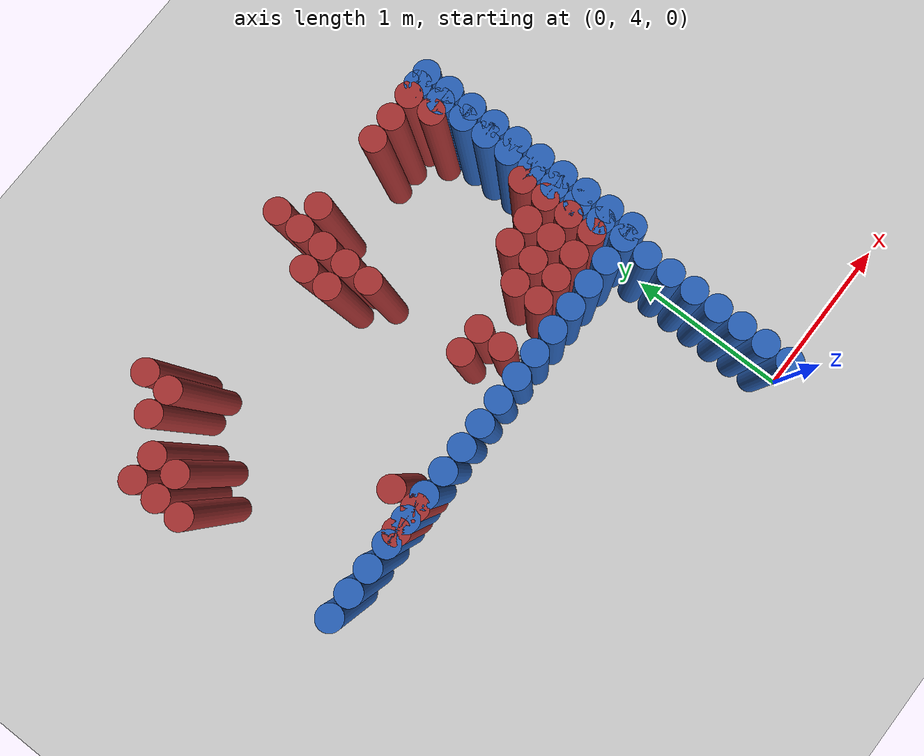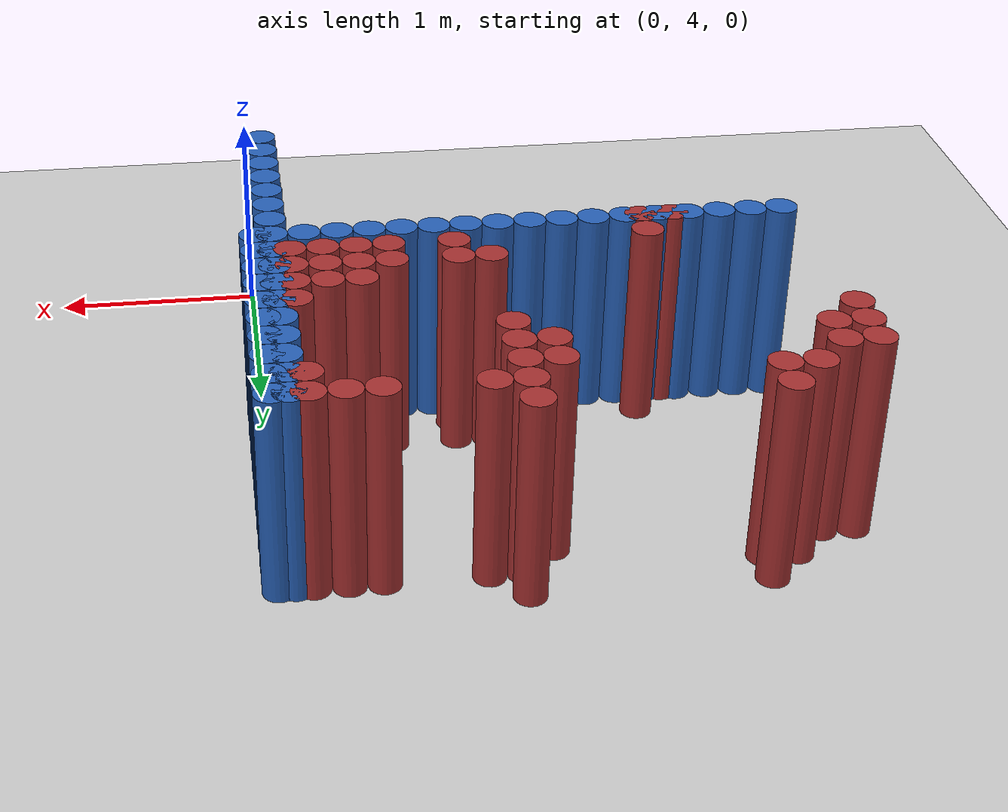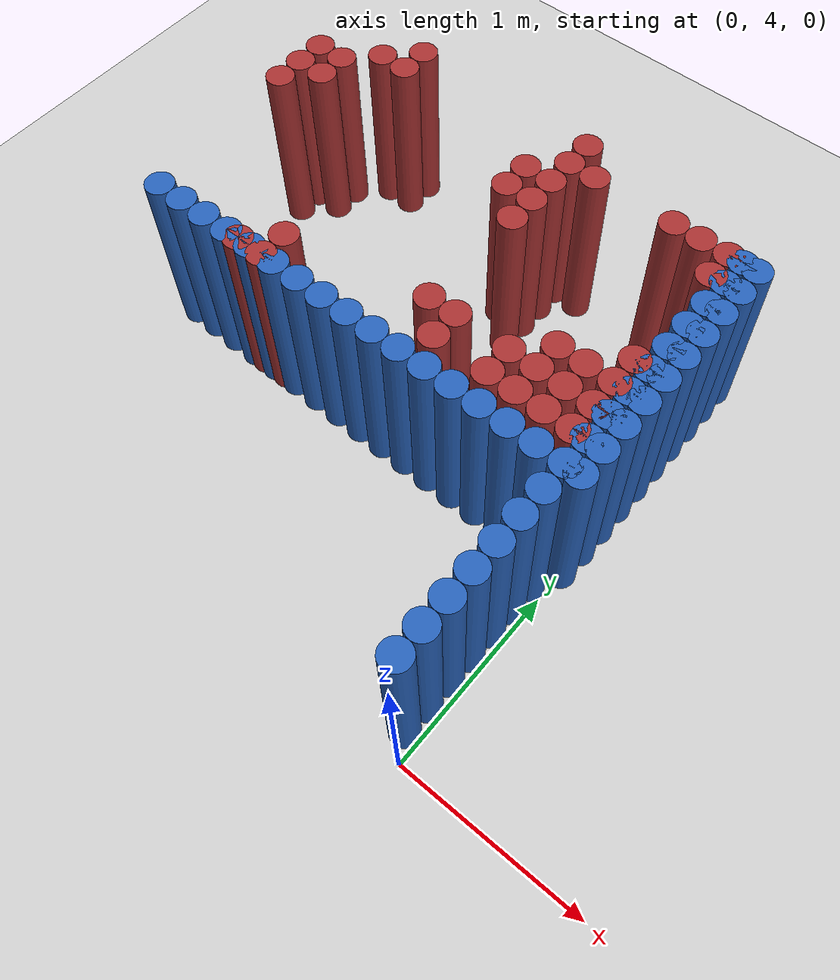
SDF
<sdf version="1.6">
 <world name="barn_world">
  <model name="ground_plane">
   <static>1</static>
   <link name="link">
    <collision name="collision">
     <geometry><plane><normal>0 0 1</normal><size>100 100</size></plane></geometry>
    </collision>
    <visual name="visual">
     <geometry><plane><normal>0 0 1</normal><size>100 100</size></plane></geometry>
     <material>
      <script><uri>file://media/materials/scripts/gazebo.material</uri><name>Gazebo/Grey</name></script>
     </material>
    </visual>
   </link>
  </model>
  <model name="unit_cylinder_82">
   <static>1</static>
   <pose>-0.0750 4.1250 0.5 0 0 0</pose>
   <link name="link">
    <collision name="collision">
     <geometry><cylinder><radius>0.075</radius><length>1</length></cylinder></geometry>
    </collision>
    <visual name="visual">
     <geometry><cylinder><radius>0.075</radius><length>1</length></cylinder></geometry>
     <material><ambient>0.152 0.379 0.72 1</ambient><diffuse>0.152 0.379 0.72 1</diffuse></material>
    </visual>
   </link>
  </model>
  <model name="unit_cylinder_84">
   <static>1</static>
   <pose>-0.0750 4.2750 0.5 0 0 0</pose>
   <link name="link">
    <collision name="collision">
     <geometry><cylinder><radius>0.075</radius><length>1</length></cylinder></geometry>
    </collision>
    <visual name="visual">
     <geometry><cylinder><radius>0.075</radius><length>1</length></cylinder></geometry>
     <material><ambient>0.152 0.379 0.72 1</ambient><diffuse>0.152 0.379 0.72 1</diffuse></material>
    </visual>
   </link>
  </model>
  <model name="unit_cylinder_86">
   <static>1</static>
   <pose>-0.0750 4.4250 0.5 0 0 0</pose>
   <link name="link">
    <collision name="collision">
     <geometry><cylinder><radius>0.075</radius><length>1</length></cylinder></geometry>
    </collision>
    <visual name="visual">
     <geometry><cylinder><radius>0.075</radius><length>1</length></cylinder></geometry>
     <material><ambient>0.152 0.379 0.72 1</ambient><diffuse>0.152 0.379 0.72 1</diffuse></material>
    </visual>
   </link>
  </model>
  <model name="unit_cylinder_88">
   <static>1</static>
   <pose>-0.0750 4.5750 0.5 0 0 0</pose>
   <link name="link">
    <collision name="collision">
     <geometry><cylinder><radius>0.075</radius><length>1</length></cylinder></geometry>
    </collision>
    <visual name="visual">
     <geometry><cylinder><radius>0.075</radius><length>1</length></cylinder></geometry>
     <material><ambient>0.152 0.379 0.72 1</ambient><diffuse>0.152 0.379 0.72 1</diffuse></material>
    </visual>
   </link>
  </model>
  <model name="unit_cylinder_90">
   <static>1</static>
   <pose>-0.0750 4.7250 0.5 0 0 0</pose>
   <link name="link">
    <collision name="collision">
     <geometry><cylinder><radius>0.075</radius><length>1</length></cylinder></geometry>
    </collision>
    <visual name="visual">
     <geometry><cylinder><radius>0.075</radius><length>1</length></cylinder></geometry>
     <material><ambient>0.152 0.379 0.72 1</ambient><diffuse>0.152 0.379 0.72 1</diffuse></material>
    </visual>
   </link>
  </model>
  <model name="unit_cylinder_92">
   <static>1</static>
   <pose>-0.0750 4.8750 0.5 0 0 0</pose>
   <link name="link">
    <collision name="collision">
     <geometry><cylinder><radius>0.075</radius><length>1</length></cylinder></geometry>
    </collision>
    <visual name="visual">
     <geometry><cylinder><radius>0.075</radius><length>1</length></cylinder></geometry>
     <material><ambient>0.152 0.379 0.72 1</ambient><diffuse>0.152 0.379 0.72 1</diffuse></material>
    </visual>
   </link>
  </model>
  <model name="unit_cylinder_94">
   <static>1</static>
   <pose>-0.0750 5.0250 0.5 0 0 0</pose>
   <link name="link">
    <collision name="collision">
     <geometry><cylinder><radius>0.075</radius><length>1</length></cylinder></geometry>
    </collision>
    <visual name="visual">
     <geometry><cylinder><radius>0.075</radius><length>1</length></cylinder></geometry>
     <material><ambient>0.152 0.379 0.72 1</ambient><diffuse>0.152 0.379 0.72 1</diffuse></material>
    </visual>
   </link>
  </model>
  <model name="unit_cylinder_96">
   <static>1</static>
   <pose>-0.0750 5.1750 0.5 0 0 0</pose>
   <link name="link">
    <collision name="collision">
     <geometry><cylinder><radius>0.075</radius><length>1</length></cylinder></geometry>
    </collision>
    <visual name="visual">
     <geometry><cylinder><radius>0.075</radius><length>1</length></cylinder></geometry>
     <material><ambient>0.152 0.379 0.72 1</ambient><diffuse>0.152 0.379 0.72 1</diffuse></material>
    </visual>
   </link>
  </model>
  <model name="unit_cylinder_97">
   <static>1</static>
   <pose>-0.2250 5.1750 0.5 0 0 0</pose>
   <link name="link">
    <collision name="collision">
     <geometry><cylinder><radius>0.075</radius><length>1</length></cylinder></geometry>
    </collision>
    <visual name="visual">
     <geometry><cylinder><radius>0.075</radius><length>1</length></cylinder></geometry>
     <material><ambient>0.152 0.379 0.72 1</ambient><diffuse>0.152 0.379 0.72 1</diffuse></material>
    </visual>
   </link>
  </model>
  <model name="unit_cylinder_98">
   <static>1</static>
   <pose>-0.3750 5.1750 0.5 0 0 0</pose>
   <link name="link">
    <collision name="collision">
     <geometry><cylinder><radius>0.075</radius><length>1</length></cylinder></geometry>
    </collision>
    <visual name="visual">
     <geometry><cylinder><radius>0.075</radius><length>1</length></cylinder></geometry>
     <material><ambient>0.152 0.379 0.72 1</ambient><diffuse>0.152 0.379 0.72 1</diffuse></material>
    </visual>
   </link>
  </model>
  <model name="unit_cylinder_99">
   <static>1</static>
   <pose>-0.5250 5.1750 0.5 0 0 0</pose>
   <link name="link">
    <collision name="collision">
     <geometry><cylinder><radius>0.075</radius><length>1</length></cylinder></geometry>
    </collision>
    <visual name="visual">
     <geometry><cylinder><radius>0.075</radius><length>1</length></cylinder></geometry>
     <material><ambient>0.152 0.379 0.72 1</ambient><diffuse>0.152 0.379 0.72 1</diffuse></material>
    </visual>
   </link>
  </model>
  <model name="unit_cylinder_100">
   <static>1</static>
   <pose>-0.6750 5.1750 0.5 0 0 0</pose>
   <link name="link">
    <collision name="collision">
     <geometry><cylinder><radius>0.075</radius><length>1</length></cylinder></geometry>
    </collision>
    <visual name="visual">
     <geometry><cylinder><radius>0.075</radius><length>1</length></cylinder></geometry>
     <material><ambient>0.152 0.379 0.72 1</ambient><diffuse>0.152 0.379 0.72 1</diffuse></material>
    </visual>
   </link>
  </model>
  <model name="unit_cylinder_101">
   <static>1</static>
   <pose>-0.8250 5.1750 0.5 0 0 0</pose>
   <link name="link">
    <collision name="collision">
     <geometry><cylinder><radius>0.075</radius><length>1</length></cylinder></geometry>
    </collision>
    <visual name="visual">
     <geometry><cylinder><radius>0.075</radius><length>1</length></cylinder></geometry>
     <material><ambient>0.152 0.379 0.72 1</ambient><diffuse>0.152 0.379 0.72 1</diffuse></material>
    </visual>
   </link>
  </model>
  <model name="unit_cylinder_102">
   <static>1</static>
   <pose>-0.9750 5.1750 0.5 0 0 0</pose>
   <link name="link">
    <collision name="collision">
     <geometry><cylinder><radius>0.075</radius><length>1</length></cylinder></geometry>
    </collision>
    <visual name="visual">
     <geometry><cylinder><radius>0.075</radius><length>1</length></cylinder></geometry>
     <material><ambient>0.152 0.379 0.72 1</ambient><diffuse>0.152 0.379 0.72 1</diffuse></material>
    </visual>
   </link>
  </model>
  <model name="unit_cylinder_103">
   <static>1</static>
   <pose>-1.1250 5.1750 0.5 0 0 0</pose>
   <link name="link">
    <collision name="collision">
     <geometry><cylinder><radius>0.075</radius><length>1</length></cylinder></geometry>
    </collision>
    <visual name="visual">
     <geometry><cylinder><radius>0.075</radius><length>1</length></cylinder></geometry>
     <material><ambient>0.152 0.379 0.72 1</ambient><diffuse>0.152 0.379 0.72 1</diffuse></material>
    </visual>
   </link>
  </model>
  <model name="unit_cylinder_104">
   <static>1</static>
   <pose>-1.2750 5.1750 0.5 0 0 0</pose>
   <link name="link">
    <collision name="collision">
     <geometry><cylinder><radius>0.075</radius><length>1</length></cylinder></geometry>
    </collision>
    <visual name="visual">
     <geometry><cylinder><radius>0.075</radius><length>1</length></cylinder></geometry>
     <material><ambient>0.152 0.379 0.72 1</ambient><diffuse>0.152 0.379 0.72 1</diffuse></material>
    </visual>
   </link>
  </model>
  <model name="unit_cylinder_105">
   <static>1</static>
   <pose>-1.4250 5.1750 0.5 0 0 0</pose>
   <link name="link">
    <collision name="collision">
     <geometry><cylinder><radius>0.075</radius><length>1</length></cylinder></geometry>
    </collision>
    <visual name="visual">
     <geometry><cylinder><radius>0.075</radius><length>1</length></cylinder></geometry>
     <material><ambient>0.152 0.379 0.72 1</ambient><diffuse>0.152 0.379 0.72 1</diffuse></material>
    </visual>
   </link>
  </model>
  <model name="unit_cylinder_106">
   <static>1</static>
   <pose>-1.5750 5.1750 0.5 0 0 0</pose>
   <link name="link">
    <collision name="collision">
     <geometry><cylinder><radius>0.075</radius><length>1</length></cylinder></geometry>
    </collision>
    <visual name="visual">
     <geometry><cylinder><radius>0.075</radius><length>1</length></cylinder></geometry>
     <material><ambient>0.152 0.379 0.72 1</ambient><diffuse>0.152 0.379 0.72 1</diffuse></material>
    </visual>
   </link>
  </model>
  <model name="unit_cylinder_107">
   <static>1</static>
   <pose>-1.7250 5.1750 0.5 0 0 0</pose>
   <link name="link">
    <collision name="collision">
     <geometry><cylinder><radius>0.075</radius><length>1</length></cylinder></geometry>
    </collision>
    <visual name="visual">
     <geometry><cylinder><radius>0.075</radius><length>1</length></cylinder></geometry>
     <material><ambient>0.152 0.379 0.72 1</ambient><diffuse>0.152 0.379 0.72 1</diffuse></material>
    </visual>
   </link>
  </model>
  <model name="unit_cylinder_108">
   <static>1</static>
   <pose>-1.8750 5.1750 0.5 0 0 0</pose>
   <link name="link">
    <collision name="collision">
     <geometry><cylinder><radius>0.075</radius><length>1</length></cylinder></geometry>
    </collision>
    <visual name="visual">
     <geometry><cylinder><radius>0.075</radius><length>1</length></cylinder></geometry>
     <material><ambient>0.152 0.379 0.72 1</ambient><diffuse>0.152 0.379 0.72 1</diffuse></material>
    </visual>
   </link>
  </model>
  <model name="unit_cylinder_109">
   <static>1</static>
   <pose>-2.0250 5.1750 0.5 0 0 0</pose>
   <link name="link">
    <collision name="collision">
     <geometry><cylinder><radius>0.075</radius><length>1</length></cylinder></geometry>
    </collision>
    <visual name="visual">
     <geometry><cylinder><radius>0.075</radius><length>1</length></cylinder></geometry>
     <material><ambient>0.152 0.379 0.72 1</ambient><diffuse>0.152 0.379 0.72 1</diffuse></material>
    </visual>
   </link>
  </model>
  <model name="unit_cylinder_110">
   <static>1</static>
   <pose>-2.1750 5.1750 0.5 0 0 0</pose>
   <link name="link">
    <collision name="collision">
     <geometry><cylinder><radius>0.075</radius><length>1</length></cylinder></geometry>
    </collision>
    <visual name="visual">
     <geometry><cylinder><radius>0.075</radius><length>1</length></cylinder></geometry>
     <material><ambient>0.152 0.379 0.72 1</ambient><diffuse>0.152 0.379 0.72 1</diffuse></material>
    </visual>
   </link>
  </model>
  <model name="unit_cylinder_111">
   <static>1</static>
   <pose>-2.3250 5.1750 0.5 0 0 0</pose>
   <link name="link">
    <collision name="collision">
     <geometry><cylinder><radius>0.075</radius><length>1</length></cylinder></geometry>
    </collision>
    <visual name="visual">
     <geometry><cylinder><radius>0.075</radius><length>1</length></cylinder></geometry>
     <material><ambient>0.152 0.379 0.72 1</ambient><diffuse>0.152 0.379 0.72 1</diffuse></material>
    </visual>
   </link>
  </model>
  <model name="unit_cylinder_112">
   <static>1</static>
   <pose>-2.4750 5.1750 0.5 0 0 0</pose>
   <link name="link">
    <collision name="collision">
     <geometry><cylinder><radius>0.075</radius><length>1</length></cylinder></geometry>
    </collision>
    <visual name="visual">
     <geometry><cylinder><radius>0.075</radius><length>1</length></cylinder></geometry>
     <material><ambient>0.152 0.379 0.72 1</ambient><diffuse>0.152 0.379 0.72 1</diffuse></material>
    </visual>
   </link>
  </model>
  <model name="unit_cylinder_245">
   <static>1</static>
   <pose>-2.5500 6.0750 0.5 0 0 0</pose>
   <link name="link">
    <collision name="collision">
     <geometry><cylinder><radius>0.075</radius><length>1</length></cylinder></geometry>
    </collision>
    <visual name="visual">
     <geometry><cylinder><radius>0.075</radius><length>1</length></cylinder></geometry>
     <material><ambient>0.648 0.192 0.192 1</ambient><diffuse>0.648 0.192 0.192 1</diffuse></material>
    </visual>
   </link>
  </model>
  <model name="unit_cylinder_246">
   <static>1</static>
   <pose>-2.5500 6.2250 0.5 0 0 0</pose>
   <link name="link">
    <collision name="collision">
     <geometry><cylinder><radius>0.075</radius><length>1</length></cylinder></geometry>
    </collision>
    <visual name="visual">
     <geometry><cylinder><radius>0.075</radius><length>1</length></cylinder></geometry>
     <material><ambient>0.648 0.192 0.192 1</ambient><diffuse>0.648 0.192 0.192 1</diffuse></material>
    </visual>
   </link>
  </model>
  <model name="unit_cylinder_247">
   <static>1</static>
   <pose>-2.5500 6.3750 0.5 0 0 0</pose>
   <link name="link">
    <collision name="collision">
     <geometry><cylinder><radius>0.075</radius><length>1</length></cylinder></geometry>
    </collision>
    <visual name="visual">
     <geometry><cylinder><radius>0.075</radius><length>1</length></cylinder></geometry>
     <material><ambient>0.648 0.192 0.192 1</ambient><diffuse>0.648 0.192 0.192 1</diffuse></material>
    </visual>
   </link>
  </model>
  <model name="unit_cylinder_254">
   <static>1</static>
   <pose>-2.4000 6.2250 0.5 0 0 0</pose>
   <link name="link">
    <collision name="collision">
     <geometry><cylinder><radius>0.075</radius><length>1</length></cylinder></geometry>
    </collision>
    <visual name="visual">
     <geometry><cylinder><radius>0.075</radius><length>1</length></cylinder></geometry>
     <material><ambient>0.648 0.192 0.192 1</ambient><diffuse>0.648 0.192 0.192 1</diffuse></material>
    </visual>
   </link>
  </model>
  <model name="unit_cylinder_255">
   <static>1</static>
   <pose>-2.4000 6.3750 0.5 0 0 0</pose>
   <link name="link">
    <collision name="collision">
     <geometry><cylinder><radius>0.075</radius><length>1</length></cylinder></geometry>
    </collision>
    <visual name="visual">
     <geometry><cylinder><radius>0.075</radius><length>1</length></cylinder></geometry>
     <material><ambient>0.648 0.192 0.192 1</ambient><diffuse>0.648 0.192 0.192 1</diffuse></material>
    </visual>
   </link>
  </model>
  <model name="unit_cylinder_264">
   <static>1</static>
   <pose>-2.2500 6.5250 0.5 0 0 0</pose>
   <link name="link">
    <collision name="collision">
     <geometry><cylinder><radius>0.075</radius><length>1</length></cylinder></geometry>
    </collision>
    <visual name="visual">
     <geometry><cylinder><radius>0.075</radius><length>1</length></cylinder></geometry>
     <material><ambient>0.648 0.192 0.192 1</ambient><diffuse>0.648 0.192 0.192 1</diffuse></material>
    </visual>
   </link>
  </model>
  <model name="unit_cylinder_267">
   <static>1</static>
   <pose>-2.1000 6.5250 0.5 0 0 0</pose>
   <link name="link">
    <collision name="collision">
     <geometry><cylinder><radius>0.075</radius><length>1</length></cylinder></geometry>
    </collision>
    <visual name="visual">
     <geometry><cylinder><radius>0.075</radius><length>1</length></cylinder></geometry>
     <material><ambient>0.648 0.192 0.192 1</ambient><diffuse>0.648 0.192 0.192 1</diffuse></material>
    </visual>
   </link>
  </model>
  <model name="unit_cylinder_268">
   <static>1</static>
   <pose>-2.1000 6.6750 0.5 0 0 0</pose>
   <link name="link">
    <collision name="collision">
     <geometry><cylinder><radius>0.075</radius><length>1</length></cylinder></geometry>
    </collision>
    <visual name="visual">
     <geometry><cylinder><radius>0.075</radius><length>1</length></cylinder></geometry>
     <material><ambient>0.648 0.192 0.192 1</ambient><diffuse>0.648 0.192 0.192 1</diffuse></material>
    </visual>
   </link>
  </model>
  <model name="unit_cylinder_271">
   <static>1</static>
   <pose>-1.9500 5.1750 0.5 0 0 0</pose>
   <link name="link">
    <collision name="collision">
     <geometry><cylinder><radius>0.075</radius><length>1</length></cylinder></geometry>
    </collision>
    <visual name="visual">
     <geometry><cylinder><radius>0.075</radius><length>1</length></cylinder></geometry>
     <material><ambient>0.648 0.192 0.192 1</ambient><diffuse>0.648 0.192 0.192 1</diffuse></material>
    </visual>
   </link>
  </model>
  <model name="unit_cylinder_277">
   <static>1</static>
   <pose>-1.8000 5.1750 0.5 0 0 0</pose>
   <link name="link">
    <collision name="collision">
     <geometry><cylinder><radius>0.075</radius><length>1</length></cylinder></geometry>
    </collision>
    <visual name="visual">
     <geometry><cylinder><radius>0.075</radius><length>1</length></cylinder></geometry>
     <material><ambient>0.648 0.192 0.192 1</ambient><diffuse>0.648 0.192 0.192 1</diffuse></material>
    </visual>
   </link>
  </model>
  <model name="unit_cylinder_278">
   <static>1</static>
   <pose>-1.8000 5.3250 0.5 0 0 0</pose>
   <link name="link">
    <collision name="collision">
     <geometry><cylinder><radius>0.075</radius><length>1</length></cylinder></geometry>
    </collision>
    <visual name="visual">
     <geometry><cylinder><radius>0.075</radius><length>1</length></cylinder></geometry>
     <material><ambient>0.648 0.192 0.192 1</ambient><diffuse>0.648 0.192 0.192 1</diffuse></material>
    </visual>
   </link>
  </model>
  <model name="unit_cylinder_290">
   <static>1</static>
   <pose>-1.2000 6.2250 0.5 0 0 0</pose>
   <link name="link">
    <collision name="collision">
     <geometry><cylinder><radius>0.075</radius><length>1</length></cylinder></geometry>
    </collision>
    <visual name="visual">
     <geometry><cylinder><radius>0.075</radius><length>1</length></cylinder></geometry>
     <material><ambient>0.648 0.192 0.192 1</ambient><diffuse>0.648 0.192 0.192 1</diffuse></material>
    </visual>
   </link>
  </model>
  <model name="unit_cylinder_291">
   <static>1</static>
   <pose>-1.2000 6.3750 0.5 0 0 0</pose>
   <link name="link">
    <collision name="collision">
     <geometry><cylinder><radius>0.075</radius><length>1</length></cylinder></geometry>
    </collision>
    <visual name="visual">
     <geometry><cylinder><radius>0.075</radius><length>1</length></cylinder></geometry>
     <material><ambient>0.648 0.192 0.192 1</ambient><diffuse>0.648 0.192 0.192 1</diffuse></material>
    </visual>
   </link>
  </model>
  <model name="unit_cylinder_294">
   <static>1</static>
   <pose>-1.0500 5.4750 0.5 0 0 0</pose>
   <link name="link">
    <collision name="collision">
     <geometry><cylinder><radius>0.075</radius><length>1</length></cylinder></geometry>
    </collision>
    <visual name="visual">
     <geometry><cylinder><radius>0.075</radius><length>1</length></cylinder></geometry>
     <material><ambient>0.648 0.192 0.192 1</ambient><diffuse>0.648 0.192 0.192 1</diffuse></material>
    </visual>
   </link>
  </model>
  <model name="unit_cylinder_295">
   <static>1</static>
   <pose>-1.0500 6.0750 0.5 0 0 0</pose>
   <link name="link">
    <collision name="collision">
     <geometry><cylinder><radius>0.075</radius><length>1</length></cylinder></geometry>
    </collision>
    <visual name="visual">
     <geometry><cylinder><radius>0.075</radius><length>1</length></cylinder></geometry>
     <material><ambient>0.648 0.192 0.192 1</ambient><diffuse>0.648 0.192 0.192 1</diffuse></material>
    </visual>
   </link>
  </model>
  <model name="unit_cylinder_296">
   <static>1</static>
   <pose>-1.0500 6.2250 0.5 0 0 0</pose>
   <link name="link">
    <collision name="collision">
     <geometry><cylinder><radius>0.075</radius><length>1</length></cylinder></geometry>
    </collision>
    <visual name="visual">
     <geometry><cylinder><radius>0.075</radius><length>1</length></cylinder></geometry>
     <material><ambient>0.648 0.192 0.192 1</ambient><diffuse>0.648 0.192 0.192 1</diffuse></material>
    </visual>
   </link>
  </model>
  <model name="unit_cylinder_297">
   <static>1</static>
   <pose>-1.0500 6.3750 0.5 0 0 0</pose>
   <link name="link">
    <collision name="collision">
     <geometry><cylinder><radius>0.075</radius><length>1</length></cylinder></geometry>
    </collision>
    <visual name="visual">
     <geometry><cylinder><radius>0.075</radius><length>1</length></cylinder></geometry>
     <material><ambient>0.648 0.192 0.192 1</ambient><diffuse>0.648 0.192 0.192 1</diffuse></material>
    </visual>
   </link>
  </model>
  <model name="unit_cylinder_298">
   <static>1</static>
   <pose>-1.0500 6.5250 0.5 0 0 0</pose>
   <link name="link">
    <collision name="collision">
     <geometry><cylinder><radius>0.075</radius><length>1</length></cylinder></geometry>
    </collision>
    <visual name="visual">
     <geometry><cylinder><radius>0.075</radius><length>1</length></cylinder></geometry>
     <material><ambient>0.648 0.192 0.192 1</ambient><diffuse>0.648 0.192 0.192 1</diffuse></material>
    </visual>
   </link>
  </model>
  <model name="unit_cylinder_299">
   <static>1</static>
   <pose>-1.0500 6.6750 0.5 0 0 0</pose>
   <link name="link">
    <collision name="collision">
     <geometry><cylinder><radius>0.075</radius><length>1</length></cylinder></geometry>
    </collision>
    <visual name="visual">
     <geometry><cylinder><radius>0.075</radius><length>1</length></cylinder></geometry>
     <material><ambient>0.648 0.192 0.192 1</ambient><diffuse>0.648 0.192 0.192 1</diffuse></material>
    </visual>
   </link>
  </model>
  <model name="unit_cylinder_305">
   <static>1</static>
   <pose>-0.9000 5.3250 0.5 0 0 0</pose>
   <link name="link">
    <collision name="collision">
     <geometry><cylinder><radius>0.075</radius><length>1</length></cylinder></geometry>
    </collision>
    <visual name="visual">
     <geometry><cylinder><radius>0.075</radius><length>1</length></cylinder></geometry>
     <material><ambient>0.648 0.192 0.192 1</ambient><diffuse>0.648 0.192 0.192 1</diffuse></material>
    </visual>
   </link>
  </model>
  <model name="unit_cylinder_306">
   <static>1</static>
   <pose>-0.9000 5.4750 0.5 0 0 0</pose>
   <link name="link">
    <collision name="collision">
     <geometry><cylinder><radius>0.075</radius><length>1</length></cylinder></geometry>
    </collision>
    <visual name="visual">
     <geometry><cylinder><radius>0.075</radius><length>1</length></cylinder></geometry>
     <material><ambient>0.648 0.192 0.192 1</ambient><diffuse>0.648 0.192 0.192 1</diffuse></material>
    </visual>
   </link>
  </model>
  <model name="unit_cylinder_307">
   <static>1</static>
   <pose>-0.9000 6.5250 0.5 0 0 0</pose>
   <link name="link">
    <collision name="collision">
     <geometry><cylinder><radius>0.075</radius><length>1</length></cylinder></geometry>
    </collision>
    <visual name="visual">
     <geometry><cylinder><radius>0.075</radius><length>1</length></cylinder></geometry>
     <material><ambient>0.648 0.192 0.192 1</ambient><diffuse>0.648 0.192 0.192 1</diffuse></material>
    </visual>
   </link>
  </model>
  <model name="unit_cylinder_320">
   <static>1</static>
   <pose>-0.6000 5.3250 0.5 0 0 0</pose>
   <link name="link">
    <collision name="collision">
     <geometry><cylinder><radius>0.075</radius><length>1</length></cylinder></geometry>
    </collision>
    <visual name="visual">
     <geometry><cylinder><radius>0.075</radius><length>1</length></cylinder></geometry>
     <material><ambient>0.648 0.192 0.192 1</ambient><diffuse>0.648 0.192 0.192 1</diffuse></material>
    </visual>
   </link>
  </model>
  <model name="unit_cylinder_321">
   <static>1</static>
   <pose>-0.6000 5.4750 0.5 0 0 0</pose>
   <link name="link">
    <collision name="collision">
     <geometry><cylinder><radius>0.075</radius><length>1</length></cylinder></geometry>
    </collision>
    <visual name="visual">
     <geometry><cylinder><radius>0.075</radius><length>1</length></cylinder></geometry>
     <material><ambient>0.648 0.192 0.192 1</ambient><diffuse>0.648 0.192 0.192 1</diffuse></material>
    </visual>
   </link>
  </model>
  <model name="unit_cylinder_327">
   <static>1</static>
   <pose>-0.4500 5.3250 0.5 0 0 0</pose>
   <link name="link">
    <collision name="collision">
     <geometry><cylinder><radius>0.075</radius><length>1</length></cylinder></geometry>
    </collision>
    <visual name="visual">
     <geometry><cylinder><radius>0.075</radius><length>1</length></cylinder></geometry>
     <material><ambient>0.648 0.192 0.192 1</ambient><diffuse>0.648 0.192 0.192 1</diffuse></material>
    </visual>
   </link>
  </model>
  <model name="unit_cylinder_328">
   <static>1</static>
   <pose>-0.4500 5.4750 0.5 0 0 0</pose>
   <link name="link">
    <collision name="collision">
     <geometry><cylinder><radius>0.075</radius><length>1</length></cylinder></geometry>
    </collision>
    <visual name="visual">
     <geometry><cylinder><radius>0.075</radius><length>1</length></cylinder></geometry>
     <material><ambient>0.648 0.192 0.192 1</ambient><diffuse>0.648 0.192 0.192 1</diffuse></material>
    </visual>
   </link>
  </model>
  <model name="unit_cylinder_329">
   <static>1</static>
   <pose>-0.4500 5.6250 0.5 0 0 0</pose>
   <link name="link">
    <collision name="collision">
     <geometry><cylinder><radius>0.075</radius><length>1</length></cylinder></geometry>
    </collision>
    <visual name="visual">
     <geometry><cylinder><radius>0.075</radius><length>1</length></cylinder></geometry>
     <material><ambient>0.648 0.192 0.192 1</ambient><diffuse>0.648 0.192 0.192 1</diffuse></material>
    </visual>
   </link>
  </model>
  <model name="unit_cylinder_330">
   <static>1</static>
   <pose>-0.4500 6.5250 0.5 0 0 0</pose>
   <link name="link">
    <collision name="collision">
     <geometry><cylinder><radius>0.075</radius><length>1</length></cylinder></geometry>
    </collision>
    <visual name="visual">
     <geometry><cylinder><radius>0.075</radius><length>1</length></cylinder></geometry>
     <material><ambient>0.648 0.192 0.192 1</ambient><diffuse>0.648 0.192 0.192 1</diffuse></material>
    </visual>
   </link>
  </model>
  <model name="unit_cylinder_335">
   <static>1</static>
   <pose>-0.3000 5.3250 0.5 0 0 0</pose>
   <link name="link">
    <collision name="collision">
     <geometry><cylinder><radius>0.075</radius><length>1</length></cylinder></geometry>
    </collision>
    <visual name="visual">
     <geometry><cylinder><radius>0.075</radius><length>1</length></cylinder></geometry>
     <material><ambient>0.648 0.192 0.192 1</ambient><diffuse>0.648 0.192 0.192 1</diffuse></material>
    </visual>
   </link>
  </model>
  <model name="unit_cylinder_336">
   <static>1</static>
   <pose>-0.3000 5.4750 0.5 0 0 0</pose>
   <link name="link">
    <collision name="collision">
     <geometry><cylinder><radius>0.075</radius><length>1</length></cylinder></geometry>
    </collision>
    <visual name="visual">
     <geometry><cylinder><radius>0.075</radius><length>1</length></cylinder></geometry>
     <material><ambient>0.648 0.192 0.192 1</ambient><diffuse>0.648 0.192 0.192 1</diffuse></material>
    </visual>
   </link>
  </model>
  <model name="unit_cylinder_337">
   <static>1</static>
   <pose>-0.3000 5.6250 0.5 0 0 0</pose>
   <link name="link">
    <collision name="collision">
     <geometry><cylinder><radius>0.075</radius><length>1</length></cylinder></geometry>
    </collision>
    <visual name="visual">
     <geometry><cylinder><radius>0.075</radius><length>1</length></cylinder></geometry>
     <material><ambient>0.648 0.192 0.192 1</ambient><diffuse>0.648 0.192 0.192 1</diffuse></material>
    </visual>
   </link>
  </model>
  <model name="unit_cylinder_338">
   <static>1</static>
   <pose>-0.3000 6.5250 0.5 0 0 0</pose>
   <link name="link">
    <collision name="collision">
     <geometry><cylinder><radius>0.075</radius><length>1</length></cylinder></geometry>
    </collision>
    <visual name="visual">
     <geometry><cylinder><radius>0.075</radius><length>1</length></cylinder></geometry>
     <material><ambient>0.648 0.192 0.192 1</ambient><diffuse>0.648 0.192 0.192 1</diffuse></material>
    </visual>
   </link>
  </model>
  <model name="unit_cylinder_349">
   <static>1</static>
   <pose>-0.1500 5.3250 0.5 0 0 0</pose>
   <link name="link">
    <collision name="collision">
     <geometry><cylinder><radius>0.075</radius><length>1</length></cylinder></geometry>
    </collision>
    <visual name="visual">
     <geometry><cylinder><radius>0.075</radius><length>1</length></cylinder></geometry>
     <material><ambient>0.648 0.192 0.192 1</ambient><diffuse>0.648 0.192 0.192 1</diffuse></material>
    </visual>
   </link>
  </model>
  <model name="unit_cylinder_350">
   <static>1</static>
   <pose>-0.1500 5.4750 0.5 0 0 0</pose>
   <link name="link">
    <collision name="collision">
     <geometry><cylinder><radius>0.075</radius><length>1</length></cylinder></geometry>
    </collision>
    <visual name="visual">
     <geometry><cylinder><radius>0.075</radius><length>1</length></cylinder></geometry>
     <material><ambient>0.648 0.192 0.192 1</ambient><diffuse>0.648 0.192 0.192 1</diffuse></material>
    </visual>
   </link>
  </model>
  <model name="unit_cylinder_351">
   <static>1</static>
   <pose>-0.1500 5.6250 0.5 0 0 0</pose>
   <link name="link">
    <collision name="collision">
     <geometry><cylinder><radius>0.075</radius><length>1</length></cylinder></geometry>
    </collision>
    <visual name="visual">
     <geometry><cylinder><radius>0.075</radius><length>1</length></cylinder></geometry>
     <material><ambient>0.648 0.192 0.192 1</ambient><diffuse>0.648 0.192 0.192 1</diffuse></material>
    </visual>
   </link>
  </model>
  <model name="unit_cylinder_352">
   <static>1</static>
   <pose>-0.1500 5.7750 0.5 0 0 0</pose>
   <link name="link">
    <collision name="collision">
     <geometry><cylinder><radius>0.075</radius><length>1</length></cylinder></geometry>
    </collision>
    <visual name="visual">
     <geometry><cylinder><radius>0.075</radius><length>1</length></cylinder></geometry>
     <material><ambient>0.648 0.192 0.192 1</ambient><diffuse>0.648 0.192 0.192 1</diffuse></material>
    </visual>
   </link>
  </model>
  <model name="unit_cylinder_353">
   <static>1</static>
   <pose>-0.1500 6.3750 0.5 0 0 0</pose>
   <link name="link">
    <collision name="collision">
     <geometry><cylinder><radius>0.075</radius><length>1</length></cylinder></geometry>
    </collision>
    <visual name="visual">
     <geometry><cylinder><radius>0.075</radius><length>1</length></cylinder></geometry>
     <material><ambient>0.648 0.192 0.192 1</ambient><diffuse>0.648 0.192 0.192 1</diffuse></material>
    </visual>
   </link>
  </model>
  <model name="unit_cylinder_354">
   <static>1</static>
   <pose>-0.1500 6.5250 0.5 0 0 0</pose>
   <link name="link">
    <collision name="collision">
     <geometry><cylinder><radius>0.075</radius><length>1</length></cylinder></geometry>
    </collision>
    <visual name="visual">
     <geometry><cylinder><radius>0.075</radius><length>1</length></cylinder></geometry>
     <material><ambient>0.648 0.192 0.192 1</ambient><diffuse>0.648 0.192 0.192 1</diffuse></material>
    </visual>
   </link>
  </model>
  <model name="unit_cylinder_369">
   <static>1</static>
   <pose>0.0000 5.1750 0.5 0 0 0</pose>
   <link name="link">
    <collision name="collision">
     <geometry><cylinder><radius>0.075</radius><length>1</length></cylinder></geometry>
    </collision>
    <visual name="visual">
     <geometry><cylinder><radius>0.075</radius><length>1</length></cylinder></geometry>
     <material><ambient>0.152 0.379 0.72 1</ambient><diffuse>0.152 0.379 0.72 1</diffuse></material>
    </visual>
   </link>
  </model>
  <model name="unit_cylinder_370">
   <static>1</static>
   <pose>0.0000 5.3250 0.5 0 0 0</pose>
   <link name="link">
    <collision name="collision">
     <geometry><cylinder><radius>0.075</radius><length>1</length></cylinder></geometry>
    </collision>
    <visual name="visual">
     <geometry><cylinder><radius>0.075</radius><length>1</length></cylinder></geometry>
     <material><ambient>0.152 0.379 0.72 1</ambient><diffuse>0.152 0.379 0.72 1</diffuse></material>
    </visual>
   </link>
  </model>
  <model name="unit_cylinder_371">
   <static>1</static>
   <pose>0.0000 5.4750 0.5 0 0 0</pose>
   <link name="link">
    <collision name="collision">
     <geometry><cylinder><radius>0.075</radius><length>1</length></cylinder></geometry>
    </collision>
    <visual name="visual">
     <geometry><cylinder><radius>0.075</radius><length>1</length></cylinder></geometry>
     <material><ambient>0.152 0.379 0.72 1</ambient><diffuse>0.152 0.379 0.72 1</diffuse></material>
    </visual>
   </link>
  </model>
  <model name="unit_cylinder_372">
   <static>1</static>
   <pose>0.0000 5.6250 0.5 0 0 0</pose>
   <link name="link">
    <collision name="collision">
     <geometry><cylinder><radius>0.075</radius><length>1</length></cylinder></geometry>
    </collision>
    <visual name="visual">
     <geometry><cylinder><radius>0.075</radius><length>1</length></cylinder></geometry>
     <material><ambient>0.152 0.379 0.72 1</ambient><diffuse>0.152 0.379 0.72 1</diffuse></material>
    </visual>
   </link>
  </model>
  <model name="unit_cylinder_373">
   <static>1</static>
   <pose>0.0000 5.7750 0.5 0 0 0</pose>
   <link name="link">
    <collision name="collision">
     <geometry><cylinder><radius>0.075</radius><length>1</length></cylinder></geometry>
    </collision>
    <visual name="visual">
     <geometry><cylinder><radius>0.075</radius><length>1</length></cylinder></geometry>
     <material><ambient>0.152 0.379 0.72 1</ambient><diffuse>0.152 0.379 0.72 1</diffuse></material>
    </visual>
   </link>
  </model>
  <model name="unit_cylinder_374">
   <static>1</static>
   <pose>0.0000 5.9250 0.5 0 0 0</pose>
   <link name="link">
    <collision name="collision">
     <geometry><cylinder><radius>0.075</radius><length>1</length></cylinder></geometry>
    </collision>
    <visual name="visual">
     <geometry><cylinder><radius>0.075</radius><length>1</length></cylinder></geometry>
     <material><ambient>0.152 0.379 0.72 1</ambient><diffuse>0.152 0.379 0.72 1</diffuse></material>
    </visual>
   </link>
  </model>
  <model name="unit_cylinder_375">
   <static>1</static>
   <pose>0.0000 6.0750 0.5 0 0 0</pose>
   <link name="link">
    <collision name="collision">
     <geometry><cylinder><radius>0.075</radius><length>1</length></cylinder></geometry>
    </collision>
    <visual name="visual">
     <geometry><cylinder><radius>0.075</radius><length>1</length></cylinder></geometry>
     <material><ambient>0.152 0.379 0.72 1</ambient><diffuse>0.152 0.379 0.72 1</diffuse></material>
    </visual>
   </link>
  </model>
  <model name="unit_cylinder_376">
   <static>1</static>
   <pose>0.0000 6.2250 0.5 0 0 0</pose>
   <link name="link">
    <collision name="collision">
     <geometry><cylinder><radius>0.075</radius><length>1</length></cylinder></geometry>
    </collision>
    <visual name="visual">
     <geometry><cylinder><radius>0.075</radius><length>1</length></cylinder></geometry>
     <material><ambient>0.152 0.379 0.72 1</ambient><diffuse>0.152 0.379 0.72 1</diffuse></material>
    </visual>
   </link>
  </model>
  <model name="unit_cylinder_377">
   <static>1</static>
   <pose>0.0000 6.3750 0.5 0 0 0</pose>
   <link name="link">
    <collision name="collision">
     <geometry><cylinder><radius>0.075</radius><length>1</length></cylinder></geometry>
    </collision>
    <visual name="visual">
     <geometry><cylinder><radius>0.075</radius><length>1</length></cylinder></geometry>
     <material><ambient>0.152 0.379 0.72 1</ambient><diffuse>0.152 0.379 0.72 1</diffuse></material>
    </visual>
   </link>
  </model>
  <model name="unit_cylinder_378">
   <static>1</static>
   <pose>0.0000 6.5250 0.5 0 0 0</pose>
   <link name="link">
    <collision name="collision">
     <geometry><cylinder><radius>0.075</radius><length>1</length></cylinder></geometry>
    </collision>
    <visual name="visual">
     <geometry><cylinder><radius>0.075</radius><length>1</length></cylinder></geometry>
     <material><ambient>0.152 0.379 0.72 1</ambient><diffuse>0.152 0.379 0.72 1</diffuse></material>
    </visual>
   </link>
  </model>
  <model name="unit_cylinder_429">
   <static>1</static>
   <pose>-0.0750 5.1750 0.5 0 0 0</pose>
   <link name="link">
    <collision name="collision">
     <geometry><cylinder><radius>0.075</radius><length>1</length></cylinder></geometry>
    </collision>
    <visual name="visual">
     <geometry><cylinder><radius>0.075</radius><length>1</length></cylinder></geometry>
     <material><ambient>0.152 0.379 0.72 1</ambient><diffuse>0.152 0.379 0.72 1</diffuse></material>
    </visual>
   </link>
  </model>
  <model name="unit_cylinder_431">
   <static>1</static>
   <pose>-0.0750 5.3250 0.5 0 0 0</pose>
   <link name="link">
    <collision name="collision">
     <geometry><cylinder><radius>0.075</radius><length>1</length></cylinder></geometry>
    </collision>
    <visual name="visual">
     <geometry><cylinder><radius>0.075</radius><length>1</length></cylinder></geometry>
     <material><ambient>0.152 0.379 0.72 1</ambient><diffuse>0.152 0.379 0.72 1</diffuse></material>
    </visual>
   </link>
  </model>
  <model name="unit_cylinder_433">
   <static>1</static>
   <pose>-0.0750 5.4750 0.5 0 0 0</pose>
   <link name="link">
    <collision name="collision">
     <geometry><cylinder><radius>0.075</radius><length>1</length></cylinder></geometry>
    </collision>
    <visual name="visual">
     <geometry><cylinder><radius>0.075</radius><length>1</length></cylinder></geometry>
     <material><ambient>0.152 0.379 0.72 1</ambient><diffuse>0.152 0.379 0.72 1</diffuse></material>
    </visual>
   </link>
  </model>
  <model name="unit_cylinder_435">
   <static>1</static>
   <pose>-0.0750 5.6250 0.5 0 0 0</pose>
   <link name="link">
    <collision name="collision">
     <geometry><cylinder><radius>0.075</radius><length>1</length></cylinder></geometry>
    </collision>
    <visual name="visual">
     <geometry><cylinder><radius>0.075</radius><length>1</length></cylinder></geometry>
     <material><ambient>0.152 0.379 0.72 1</ambient><diffuse>0.152 0.379 0.72 1</diffuse></material>
    </visual>
   </link>
  </model>
  <model name="unit_cylinder_437">
   <static>1</static>
   <pose>-0.0750 5.7750 0.5 0 0 0</pose>
   <link name="link">
    <collision name="collision">
     <geometry><cylinder><radius>0.075</radius><length>1</length></cylinder></geometry>
    </collision>
    <visual name="visual">
     <geometry><cylinder><radius>0.075</radius><length>1</length></cylinder></geometry>
     <material><ambient>0.152 0.379 0.72 1</ambient><diffuse>0.152 0.379 0.72 1</diffuse></material>
    </visual>
   </link>
  </model>
  <model name="unit_cylinder_439">
   <static>1</static>
   <pose>-0.0750 5.9250 0.5 0 0 0</pose>
   <link name="link">
    <collision name="collision">
     <geometry><cylinder><radius>0.075</radius><length>1</length></cylinder></geometry>
    </collision>
    <visual name="visual">
     <geometry><cylinder><radius>0.075</radius><length>1</length></cylinder></geometry>
     <material><ambient>0.152 0.379 0.72 1</ambient><diffuse>0.152 0.379 0.72 1</diffuse></material>
    </visual>
   </link>
  </model>
  <model name="unit_cylinder_441">
   <static>1</static>
   <pose>-0.0750 6.0750 0.5 0 0 0</pose>
   <link name="link">
    <collision name="collision">
     <geometry><cylinder><radius>0.075</radius><length>1</length></cylinder></geometry>
    </collision>
    <visual name="visual">
     <geometry><cylinder><radius>0.075</radius><length>1</length></cylinder></geometry>
     <material><ambient>0.152 0.379 0.72 1</ambient><diffuse>0.152 0.379 0.72 1</diffuse></material>
    </visual>
   </link>
  </model>
  <model name="unit_cylinder_443">
   <static>1</static>
   <pose>-0.0750 6.2250 0.5 0 0 0</pose>
   <link name="link">
    <collision name="collision">
     <geometry><cylinder><radius>0.075</radius><length>1</length></cylinder></geometry>
    </collision>
    <visual name="visual">
     <geometry><cylinder><radius>0.075</radius><length>1</length></cylinder></geometry>
     <material><ambient>0.152 0.379 0.72 1</ambient><diffuse>0.152 0.379 0.72 1</diffuse></material>
    </visual>
   </link>
  </model>
  <model name="unit_cylinder_445">
   <static>1</static>
   <pose>-0.0750 6.3750 0.5 0 0 0</pose>
   <link name="link">
    <collision name="collision">
     <geometry><cylinder><radius>0.075</radius><length>1</length></cylinder></geometry>
    </collision>
    <visual name="visual">
     <geometry><cylinder><radius>0.075</radius><length>1</length></cylinder></geometry>
     <material><ambient>0.152 0.379 0.72 1</ambient><diffuse>0.152 0.379 0.72 1</diffuse></material>
    </visual>
   </link>
  </model>
  <model name="unit_cylinder_447">
   <static>1</static>
   <pose>-0.0750 6.5250 0.5 0 0 0</pose>
   <link name="link">
    <collision name="collision">
     <geometry><cylinder><radius>0.075</radius><length>1</length></cylinder></geometry>
    </collision>
    <visual name="visual">
     <geometry><cylinder><radius>0.075</radius><length>1</length></cylinder></geometry>
     <material><ambient>0.152 0.379 0.72 1</ambient><diffuse>0.152 0.379 0.72 1</diffuse></material>
    </visual>
   </link>
  </model>
 </world>
</sdf>
